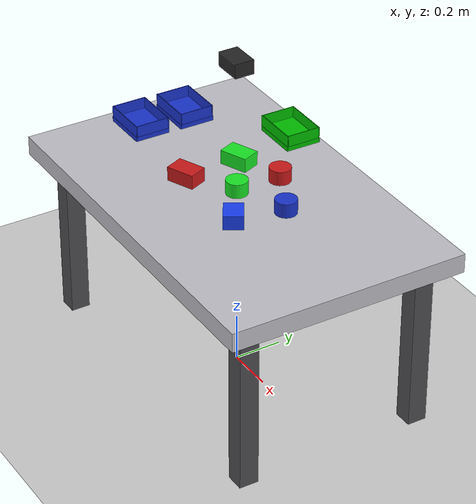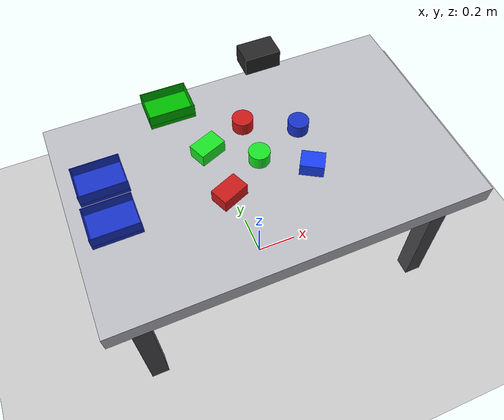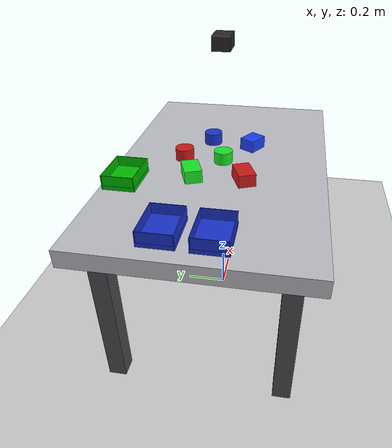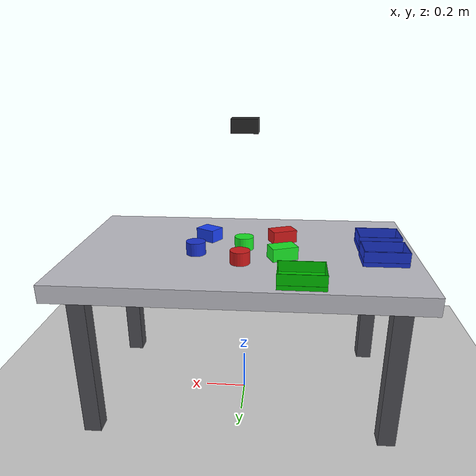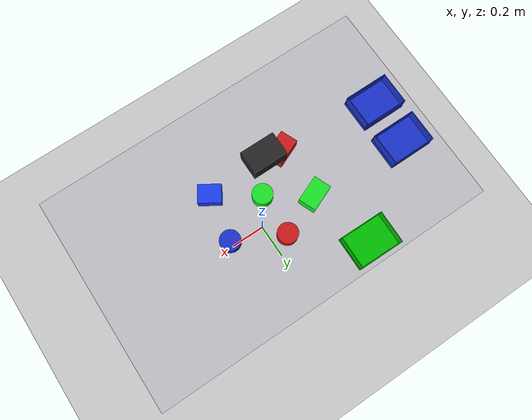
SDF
<sdf version="1.7">
 <world name="panthera_pick_place">
  <light name="sun" type="directional">
   <pose>0 0 10 0 -0 0</pose>
   <diffuse>0.8 0.8 0.8 1</diffuse>
   <specular>0.2 0.2 0.2 1</specular>
   <attenuation>
    <range>1000</range>
    <constant>0.9</constant>
    <linear>0.01</linear>
    <quadratic>0.001</quadratic>
   </attenuation>
   <direction>-0.5 0.1 -0.9</direction>
   <spot><inner_angle>0</inner_angle><outer_angle>0</outer_angle><falloff>0</falloff></spot>
  </light>
  <model name="ground_plane">
   <static>1</static>
   <link name="link">
    <collision name="collision">
     <geometry><plane><normal>0 0 1</normal><size>100 100</size></plane></geometry>
     <surface><friction><ode><mu>100</mu><mu2>50</mu2></ode></friction></surface>
    </collision>
    <visual name="visual">
     <cast_shadows>0</cast_shadows>
     <geometry><plane><normal>0 0 1</normal><size>100 100</size></plane></geometry>
     <material>
      <script><uri>file://media/materials/scripts/gazebo.material</uri><name>Gazebo/Grey</name></script>
     </material>
    </visual>
   </link>
  </model>
  <physics name="default_physics" default="0" type="ode">
   <max_step_size>0.001</max_step_size>
   <real_time_factor>1</real_time_factor>
   <real_time_update_rate>1000</real_time_update_rate>
  </physics>
  <scene><ambient>0.4 0.4 0.4 1</ambient><background>0.7 0.7 0.7 1</background><shadows>1</shadows></scene>
  <model name="panthera_work_table">
   <static>1</static>
   <pose>0.003272 0.001227 0 0 -0 0</pose>
   <link name="table_link">
    <collision name="table_top_collision">
     <pose>0 0 0.74 0 -0 0</pose>
     <geometry><box><size>1.6 1 0.08</size></box></geometry>
    </collision>
    <visual name="table_top_visual">
     <pose>0 0 0.74 0 -0 0</pose>
     <geometry><box><size>1.6 1 0.08</size></box></geometry>
     <material><ambient>0.65 0.65 0.68 1</ambient><diffuse>0.75 0.75 0.78 1</diffuse></material>
    </visual>
    <visual name="leg_1">
     <pose>0.68 0.38 0.35 0 -0 0</pose>
     <geometry><box><size>0.08 0.08 0.7</size></box></geometry>
     <material><ambient>0.2 0.2 0.22 1</ambient><diffuse>0.3 0.3 0.32 1</diffuse></material>
    </visual>
    <visual name="leg_2">
     <pose>0.68 -0.38 0.35 0 -0 0</pose>
     <geometry><box><size>0.08 0.08 0.7</size></box></geometry>
     <material><ambient>0.2 0.2 0.22 1</ambient><diffuse>0.3 0.3 0.32 1</diffuse></material>
    </visual>
    <visual name="leg_3">
     <pose>-0.68 0.38 0.35 0 -0 0</pose>
     <geometry><box><size>0.08 0.08 0.7</size></box></geometry>
     <material><ambient>0.2 0.2 0.22 1</ambient><diffuse>0.3 0.3 0.32 1</diffuse></material>
    </visual>
    <visual name="leg_4">
     <pose>-0.68 -0.38 0.35 0 -0 0</pose>
     <geometry><box><size>0.08 0.08 0.7</size></box></geometry>
     <material><ambient>0.2 0.2 0.22 1</ambient><diffuse>0.3 0.3 0.32 1</diffuse></material>
    </visual>
   </link>
  </model>
  <model name="red_piece">
   <pose>-0.178526 -0.123211 0.809995 -8.6e-05 -0 0.399875</pose>
   <link name="red_piece_link">
    <inertial>
     <mass>0.2</mass>
     <inertia><ixx>0.00017</ixx><iyy>0.0003</iyy><izz>0.00035</izz><ixy>0</ixy><ixz>0</ixz><iyz>0</iyz></inertia>
    </inertial>
    <collision name="red_piece_collision"><geometry><box><size>0.12 0.08 0.06</size></box></geometry></collision>
    <visual name="red_piece_visual">
     <geometry><box><size>0.12 0.08 0.06</size></box></geometry>
     <material><ambient>0.8 0.1 0.1 1</ambient><diffuse>0.8 0.1 0.1 1</diffuse></material>
    </visual>
   </link>
  </model>
  <model name="green_piece">
   <pose>8.1e-05 7.5e-05 0.80999 -0 -0 -0.002827</pose>
   <link name="green_piece_link">
    <inertial>
     <mass>0.15</mass>
     <inertia><ixx>0.00012</ixx><iyy>0.00012</iyy><izz>0.00015</izz><ixy>0</ixy><ixz>0</ixz><iyz>0</iyz></inertia>
    </inertial>
    <collision name="green_piece_collision">
     <geometry><cylinder><radius>0.045</radius><length>0.06</length></cylinder></geometry>
    </collision>
    <visual name="green_piece_visual">
     <geometry><cylinder><radius>0.045</radius><length>0.06</length></cylinder></geometry>
     <material><ambient>0.05 0.65 0.1 1</ambient><diffuse>0.1 0.9 0.15 1</diffuse></material>
    </visual>
   </link>
  </model>
  <model name="blue_piece">
   <pose>0.181811 -0.123358 0.809997 -4.1e-05 -3.1e-05 -0.550001</pose>
   <link name="blue_piece_link">
    <inertial>
     <mass>0.2</mass>
     <inertia><ixx>0.00017</ixx><iyy>0.0003</iyy><izz>0.00035</izz><ixy>0</ixy><ixz>0</ixz><iyz>0</iyz></inertia>
    </inertial>
    <collision name="blue_piece_collision"><geometry><box><size>0.1 0.08 0.06</size></box></geometry></collision>
    <visual name="blue_piece_visual">
     <geometry><box><size>0.1 0.08 0.06</size></box></geometry>
     <material><ambient>0.05 0.15 0.75 1</ambient><diffuse>0.1 0.25 0.95 1</diffuse></material>
    </visual>
   </link>
  </model>
  <model name="green_classification_bin">
   <static>1</static>
   <pose>-0.260167 0.405065 0.78 0 0 -0.010105</pose>
   <link name="bin">
    <visual name="base">
     <pose>0 0 0.0125 0 -0 0</pose>
     <geometry><box><size>0.2 0.15 0.02</size></box></geometry>
     <material><ambient>0 0.45 0 1</ambient><diffuse>0 0.75 0 1</diffuse></material>
    </visual>
    <visual name="front_wall">
     <pose>0 0.0725 0.04 0 -0 0</pose>
     <geometry><box><size>0.2 0.003 0.06</size></box></geometry>
     <material><ambient>0 0.45 0 1</ambient><diffuse>0 0.75 0 1</diffuse></material>
    </visual>
    <visual name="back_wall">
     <pose>0 -0.0725 0.04 0 -0 0</pose>
     <geometry><box><size>0.2 0.003 0.06</size></box></geometry>
     <material><ambient>0 0.45 0 1</ambient><diffuse>0 0.75 0 1</diffuse></material>
    </visual>
    <visual name="left_wall">
     <pose>-0.0975 0 0.04 0 -0 0</pose>
     <geometry><box><size>0.003 0.14 0.06</size></box></geometry>
     <material><ambient>0 0.45 0 1</ambient><diffuse>0 0.75 0 1</diffuse></material>
    </visual>
    <visual name="right_wall">
     <pose>0.0975 0 0.04 0 -0 0</pose>
     <geometry><box><size>0.003 0.14 0.06</size></box></geometry>
     <material><ambient>0 0.45 0 1</ambient><diffuse>0 0.75 0 1</diffuse></material>
    </visual>
   </link>
  </model>
  <model name="overhead_camera">
   <static>1</static>
   <pose>-0.003811 0 1.34276 0 -0 0</pose>
   <link name="camera_link">
    <visual name="camera_body">
     <geometry><box><size>0.12 0.08 0.06</size></box></geometry>
     <material><ambient>0.08 0.08 0.08 1</ambient><diffuse>0.15 0.15 0.15 1</diffuse></material>
    </visual>
    <sensor name="industrial_camera" type="camera">
     <pose>0 0 -0.04 3.14159 1.57079 3.14159</pose>
     <always_on>1</always_on>
     <visualize>1</visualize>
     <update_rate>30</update_rate>
     <camera>
      <horizontal_fov>1.4</horizontal_fov>
      <image><width>640</width><height>480</height><format>R8G8B8</format></image>
      <clip><near>0.05</near><far>10</far></clip>
     </camera>
     <plugin name="camera_controller" filename="libgazebo_ros_camera.so">
      <ros>
       <remapping>image_raw:=camera/image_raw</remapping>
       <remapping>camera_info:=camera/camera_info</remapping>
      </ros>
     </plugin>
    </sensor>
   </link>
  </model>
  <gravity>0 0 -9.8</gravity>
  <magnetic_field>6e-06 2.3e-05 -4.2e-05</magnetic_field>
  <atmosphere type="adiabatic"/>
  <audio><device>default</device></audio>
  <spherical_coordinates>
   <surface_model>EARTH_WGS84</surface_model>
   <latitude_deg>0</latitude_deg>
   <longitude_deg>0</longitude_deg>
   <elevation>0</elevation>
   <heading_deg>0</heading_deg>
  </spherical_coordinates>
  <model name="blue_classification">
   <static>1</static>
   <pose>-0.630329 0.129066 0.78 0 -0 0</pose>
   <link name="bin">
    <visual name="base">
     <pose>0 0 0.0125 0 -0 0</pose>
     <geometry><box><size>0.2 0.15 0.02</size></box></geometry>
     <material><ambient>0.1 0.2 0.8 1</ambient><diffuse>0.1 0.2 0.8 1</diffuse></material>
    </visual>
    <visual name="front_wall">
     <pose>0 0.0725 0.04 0 -0 0</pose>
     <geometry><box><size>0.2 0.003 0.06</size></box></geometry>
     <material><ambient>0.1 0.2 0.8 1</ambient><diffuse>0.1 0.2 0.8 1</diffuse></material>
    </visual>
    <visual name="back_wall">
     <pose>0 -0.0725 0.04 0 -0 0</pose>
     <geometry><box><size>0.2 0.003 0.06</size></box></geometry>
     <material><ambient>0.1 0.2 0.8 1</ambient><diffuse>0.1 0.2 0.8 1</diffuse></material>
    </visual>
    <visual name="left_wall">
     <pose>-0.0975 0 0.04 0 -0 0</pose>
     <geometry><box><size>0.003 0.14 0.06</size></box></geometry>
     <material><ambient>0.1 0.2 0.8 1</ambient><diffuse>0.1 0.2 0.8 1</diffuse></material>
    </visual>
    <visual name="right_wall">
     <pose>0.0975 0 0.04 0 -0 0</pose>
     <geometry><box><size>0.003 0.14 0.06</size></box></geometry>
     <material><ambient>0.1 0.2 0.8 1</ambient><diffuse>0.1 0.2 0.8 1</diffuse></material>
    </visual>
   </link>
  </model>
  <model name="red_classification_bin">
   <static>1</static>
   <pose>-0.63443 -0.072572 0.78 0 -0 0</pose>
   <link name="bin">
    <visual name="base">
     <pose>0 0 0.0125 0 -0 0</pose>
     <geometry><box><size>0.2 0.15 0.02</size></box></geometry>
     <material><ambient>0.8 0.1 0.1 1</ambient><diffuse>0.1 0.2 0.8 1</diffuse></material>
    </visual>
    <visual name="front_wall">
     <pose>0 0.0725 0.04 0 -0 0</pose>
     <geometry><box><size>0.2 0.003 0.06</size></box></geometry>
     <material><ambient>0.8 0.1 0.1 1</ambient><diffuse>0.1 0.2 0.8 1</diffuse></material>
    </visual>
    <visual name="back_wall">
     <pose>0 -0.0725 0.04 0 -0 0</pose>
     <geometry><box><size>0.2 0.003 0.06</size></box></geometry>
     <material><ambient>0.8 0.1 0.1 1</ambient><diffuse>0.1 0.2 0.8 1</diffuse></material>
    </visual>
    <visual name="left_wall">
     <pose>-0.0975 0 0.04 0 -0 0</pose>
     <geometry><box><size>0.003 0.14 0.06</size></box></geometry>
     <material><ambient>0.8 0.1 0.1 1</ambient><diffuse>0.1 0.2 0.8 1</diffuse></material>
    </visual>
    <visual name="right_wall">
     <pose>0.0975 0 0.04 0 -0 0</pose>
     <geometry><box><size>0.003 0.14 0.06</size></box></geometry>
     <material><ambient>0.8 0.1 0.1 1</ambient><diffuse>0.1 0.2 0.8 1</diffuse></material>
    </visual>
   </link>
  </model>
  <light name="user_spot_light_0" type="spot">
   <pose>0.207447 0.077499 1 0 -0 0</pose>
   <diffuse>0.5 0.5 0.5 1</diffuse>
   <specular>0.1 0.1 0.1 1</specular>
   <direction>0 0 -1</direction>
   <attenuation>
    <range>20</range>
    <constant>0.5</constant>
    <linear>0.01</linear>
    <quadratic>0.001</quadratic>
   </attenuation>
   <cast_shadows>0</cast_shadows>
   <spot><inner_angle>0.6</inner_angle><outer_angle>1</outer_angle><falloff>1</falloff></spot>
  </light>
  <model name="blue_piece_2">
   <pose>0.216707 0.087777 0.80999 -0 -0 -0.001648</pose>
   <link name="blue_piece_2">
    <inertial>
     <mass>0.15</mass>
     <inertia><ixx>0.00012</ixx><iyy>0.00012</iyy><izz>0.00015</izz><ixy>0</ixy><ixz>0</ixz><iyz>0</iyz></inertia>
    </inertial>
    <collision name="green_piece_collision">
     <geometry><cylinder><radius>0.045</radius><length>0.06</length></cylinder></geometry>
    </collision>
    <visual name="green_piece_visual">
     <geometry><cylinder><radius>0.045</radius><length>0.06</length></cylinder></geometry>
     <material><ambient>0.1 0.2 0.8 1</ambient><diffuse>0.1 0.2 0.8 1</diffuse></material>
    </visual>
   </link>
  </model>
  <model name="green_piece_2">
   <pose>-0.181485 0.117988 0.809995 -8.6e-05 0 0.387008</pose>
   <link name="green_piece_2">
    <inertial>
     <mass>0.2</mass>
     <inertia><ixx>0.00017</ixx><iyy>0.0003</iyy><izz>0.00035</izz><ixy>0</ixy><ixz>0</ixz><iyz>0</iyz></inertia>
    </inertial>
    <collision name="red_piece_collision"><geometry><box><size>0.12 0.08 0.06</size></box></geometry></collision>
    <visual name="red_piece_visual">
     <geometry><box><size>0.12 0.08 0.06</size></box></geometry>
     <material><ambient>0.05 0.65 0.1 1</ambient><diffuse>0.1 0.9 0.15 1</diffuse></material>
    </visual>
   </link>
  </model>
  <model name="red_piece_clone">
   <pose>0.004569 0.193066 0.809995 7.4e-05 7.3e-05 0.391201</pose>
   <link name="red_piece_clone">
    <inertial>
     <mass>0.15</mass>
     <inertia><ixx>0.00012</ixx><iyy>0.00012</iyy><izz>0.00015</izz><ixy>0</ixy><ixz>0</ixz><iyz>0</iyz></inertia>
    </inertial>
    <collision name="green_piece_collision">
     <geometry><cylinder><radius>0.045</radius><length>0.06</length></cylinder></geometry>
    </collision>
    <visual name="green_piece_visual">
     <geometry><cylinder><radius>0.045</radius><length>0.06</length></cylinder></geometry>
     <material><ambient>0.8 0.1 0.1 1</ambient><diffuse>0.8 0.1 0.1 1</diffuse></material>
    </visual>
   </link>
  </model>
 </world>
</sdf>
